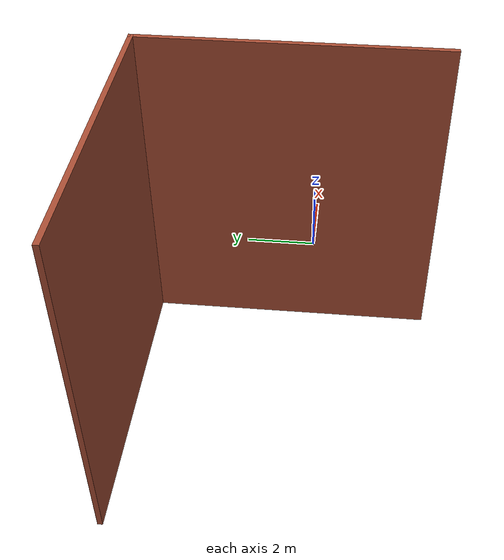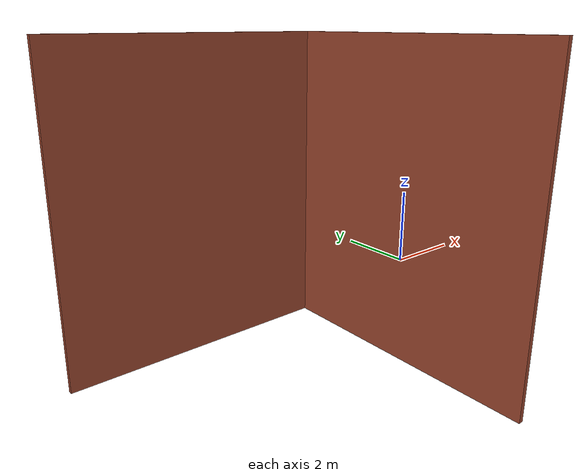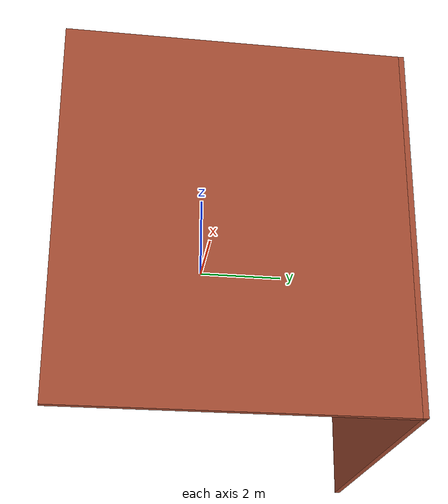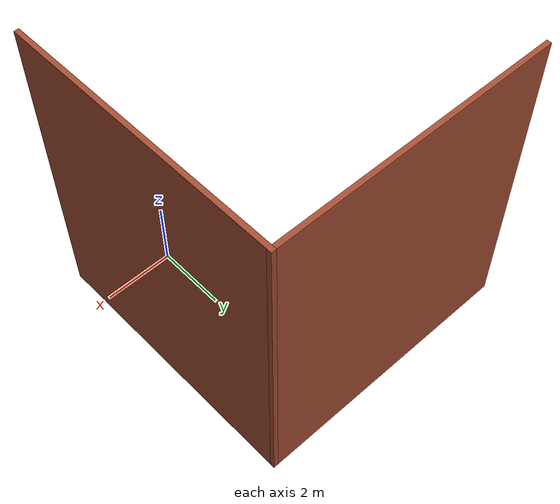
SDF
<?xml version='1.0'?>
<sdf version='1.6'>
  <model name='Wall'>
    <pose frame=''>-3.52764 0.807589 0 0 -0 0</pose>
    <link name='Wall_28'>
      <collision name='Wall_28_Collision'>
        <geometry>
          <box>
            <size>9 0.15 10</size>
          </box>
        </geometry>
        <pose frame=''>0 0 1.25 0 -0 0</pose>
      </collision>
      <visual name='Wall_28_Visual'>
        <pose frame=''>0 0 1.25 0 -0 0</pose>
        <geometry>
          <box>
            <size>9 0.15 10</size>
          </box>
        </geometry>
        <material>
          <script>
            <uri>file://media/materials/scripts/gazebo.material</uri>
            <name>Gazebo/Bricks</name>
          </script>
          <ambient>1 1 1 1</ambient>
        </material>
        <meta>
          <layer>0</layer>
        </meta>
      </visual>
      <pose frame=''>4.425 -0 0 0 -0 1.5708</pose>
    </link>
    <link name='Wall_29'>
      <collision name='Wall_29_Collision'>
        <geometry>
          <box>
            <size>9 0.15 10</size>
          </box>
        </geometry>
        <pose frame=''>0 0 1.25 0 -0 0</pose>
      </collision>
      <visual name='Wall_29_Visual'>
        <pose frame=''>0 0 1.25 0 -0 0</pose>
        <geometry>
          <box>
            <size>9 0.15 10</size>
          </box>
        </geometry>
        <material>
          <script>
            <uri>file://media/materials/scripts/gazebo.material</uri>
            <name>Gazebo/Bricks</name>
          </script>
          <ambient>1 1 1 1</ambient>
        </material>
        <meta>
          <layer>0</layer>
        </meta>
      </visual>
      <pose frame=''>-0 4.425 0 0 -0 3.14159</pose>
    </link>
    <static>1</static>
  </model>
</sdf>
